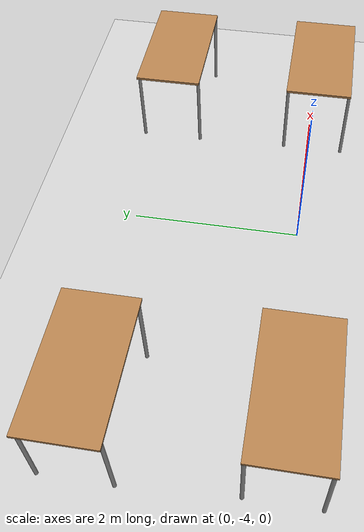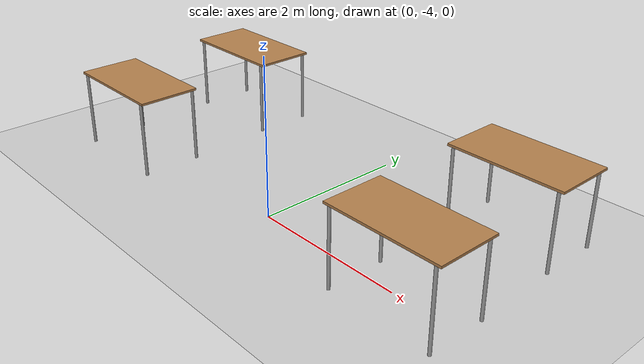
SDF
<sdf version="1.6">
 <world name="default">
  <model name="ground_plane">
   <static>1</static>
   <link name="link">
    <collision name="collision">
     <geometry><plane><normal>0 0 1</normal><size>100 100</size></plane></geometry>
     <surface>
      <contact><collide_bitmask>65535</collide_bitmask></contact>
      <friction><ode><mu>100</mu><mu2>50</mu2></ode></friction>
     </surface>
    </collision>
    <visual name="visual">
     <cast_shadows>0</cast_shadows>
     <geometry><plane><normal>0 0 1</normal><size>100 100</size></plane></geometry>
     <material>
      <script><uri>file://media/materials/scripts/gazebo.material</uri><name>Gazebo/Grey</name></script>
     </material>
    </visual>
   </link>
  </model>
  <model name="model_3">
   <model name="table">
    <static>1</static>
    <link name="link">
     <collision name="surface">
      <pose>0 0 1 0 -0 0</pose>
      <geometry><box><size>1.5 0.8 0.03</size></box></geometry>
      <surface><friction><ode><mu>0.6</mu><mu2>0.6</mu2></ode></friction></surface>
     </collision>
     <visual name="visual1">
      <pose>0 0 1 0 -0 0</pose>
      <geometry><box><size>1.5 0.8 0.03</size></box></geometry>
      <material>
       <script><uri>file://media/materials/scripts/gazebo.material</uri><name>Gazebo/Wood</name></script>
      </material>
     </visual>
     <collision name="front_left_leg">
      <pose>0.68 0.38 0.5 0 -0 0</pose>
      <geometry><cylinder><radius>0.02</radius><length>1</length></cylinder></geometry>
     </collision>
     <visual name="front_left_leg">
      <pose>0.68 0.38 0.5 0 -0 0</pose>
      <geometry><cylinder><radius>0.02</radius><length>1</length></cylinder></geometry>
      <material>
       <script><uri>file://media/materials/scripts/gazebo.material</uri><name>Gazebo/Grey</name></script>
      </material>
     </visual>
     <collision name="front_right_leg">
      <pose>0.68 -0.38 0.5 0 -0 0</pose>
      <geometry><cylinder><radius>0.02</radius><length>1</length></cylinder></geometry>
     </collision>
     <visual name="front_right_leg">
      <pose>0.68 -0.38 0.5 0 -0 0</pose>
      <geometry><cylinder><radius>0.02</radius><length>1</length></cylinder></geometry>
      <material>
       <script><uri>file://media/materials/scripts/gazebo.material</uri><name>Gazebo/Grey</name></script>
      </material>
     </visual>
     <collision name="back_right_leg">
      <pose>-0.68 -0.38 0.5 0 -0 0</pose>
      <geometry><cylinder><radius>0.02</radius><length>1</length></cylinder></geometry>
     </collision>
     <visual name="back_right_leg">
      <pose>-0.68 -0.38 0.5 0 -0 0</pose>
      <geometry><cylinder><radius>0.02</radius><length>1</length></cylinder></geometry>
      <material>
       <script><uri>file://media/materials/scripts/gazebo.material</uri><name>Gazebo/Grey</name></script>
      </material>
     </visual>
     <collision name="back_left_leg">
      <pose>-0.68 0.38 0.5 0 -0 0</pose>
      <geometry><cylinder><radius>0.02</radius><length>1</length></cylinder></geometry>
     </collision>
     <visual name="back_left_leg">
      <pose>-0.68 0.38 0.5 0 -0 0</pose>
      <geometry><cylinder><radius>0.02</radius><length>1</length></cylinder></geometry>
      <material>
       <script><uri>file://media/materials/scripts/gazebo.material</uri><name>Gazebo/Grey</name></script>
      </material>
     </visual>
    </link>
    <pose>2.34769 0.983823 -0.013295 0 -0 0</pose>
   </model>
   <model name="table_clone">
    <static>1</static>
    <link name="link">
     <collision name="surface">
      <pose>0 0 1 0 -0 0</pose>
      <geometry><box><size>1.5 0.8 0.03</size></box></geometry>
      <surface><friction><ode><mu>0.6</mu><mu2>0.6</mu2></ode></friction></surface>
     </collision>
     <visual name="visual1">
      <pose>0 0 1 0 -0 0</pose>
      <geometry><box><size>1.5 0.8 0.03</size></box></geometry>
      <material>
       <script><uri>file://media/materials/scripts/gazebo.material</uri><name>Gazebo/Wood</name></script>
      </material>
     </visual>
     <collision name="front_left_leg">
      <pose>0.68 0.38 0.5 0 -0 0</pose>
      <geometry><cylinder><radius>0.02</radius><length>1</length></cylinder></geometry>
     </collision>
     <visual name="front_left_leg">
      <pose>0.68 0.38 0.5 0 -0 0</pose>
      <geometry><cylinder><radius>0.02</radius><length>1</length></cylinder></geometry>
      <material>
       <script><uri>file://media/materials/scripts/gazebo.material</uri><name>Gazebo/Grey</name></script>
      </material>
     </visual>
     <collision name="front_right_leg">
      <pose>0.68 -0.38 0.5 0 -0 0</pose>
      <geometry><cylinder><radius>0.02</radius><length>1</length></cylinder></geometry>
     </collision>
     <visual name="front_right_leg">
      <pose>0.68 -0.38 0.5 0 -0 0</pose>
      <geometry><cylinder><radius>0.02</radius><length>1</length></cylinder></geometry>
      <material>
       <script><uri>file://media/materials/scripts/gazebo.material</uri><name>Gazebo/Grey</name></script>
      </material>
     </visual>
     <collision name="back_right_leg">
      <pose>-0.68 -0.38 0.5 0 -0 0</pose>
      <geometry><cylinder><radius>0.02</radius><length>1</length></cylinder></geometry>
     </collision>
     <visual name="back_right_leg">
      <pose>-0.68 -0.38 0.5 0 -0 0</pose>
      <geometry><cylinder><radius>0.02</radius><length>1</length></cylinder></geometry>
      <material>
       <script><uri>file://media/materials/scripts/gazebo.material</uri><name>Gazebo/Grey</name></script>
      </material>
     </visual>
     <collision name="back_left_leg">
      <pose>-0.68 0.38 0.5 0 -0 0</pose>
      <geometry><cylinder><radius>0.02</radius><length>1</length></cylinder></geometry>
     </collision>
     <visual name="back_left_leg">
      <pose>-0.68 0.38 0.5 0 -0 0</pose>
      <geometry><cylinder><radius>0.02</radius><length>1</length></cylinder></geometry>
      <material>
       <script><uri>file://media/materials/scripts/gazebo.material</uri><name>Gazebo/Grey</name></script>
      </material>
     </visual>
    </link>
    <pose>-2.40389 0.944422 0.016363 0 -0 0</pose>
   </model>
   <model name="table_clone_clone">
    <static>1</static>
    <link name="link">
     <collision name="surface">
      <pose>0 0 1 0 -0 0</pose>
      <geometry><box><size>1.5 0.8 0.03</size></box></geometry>
      <surface><friction><ode><mu>0.6</mu><mu2>0.6</mu2></ode></friction></surface>
     </collision>
     <visual name="visual1">
      <pose>0 0 1 0 -0 0</pose>
      <geometry><box><size>1.5 0.8 0.03</size></box></geometry>
      <material>
       <script><uri>file://media/materials/scripts/gazebo.material</uri><name>Gazebo/Wood</name></script>
      </material>
     </visual>
     <collision name="front_left_leg">
      <pose>0.68 0.38 0.5 0 -0 0</pose>
      <geometry><cylinder><radius>0.02</radius><length>1</length></cylinder></geometry>
     </collision>
     <visual name="front_left_leg">
      <pose>0.68 0.38 0.5 0 -0 0</pose>
      <geometry><cylinder><radius>0.02</radius><length>1</length></cylinder></geometry>
      <material>
       <script><uri>file://media/materials/scripts/gazebo.material</uri><name>Gazebo/Grey</name></script>
      </material>
     </visual>
     <collision name="front_right_leg">
      <pose>0.68 -0.38 0.5 0 -0 0</pose>
      <geometry><cylinder><radius>0.02</radius><length>1</length></cylinder></geometry>
     </collision>
     <visual name="front_right_leg">
      <pose>0.68 -0.38 0.5 0 -0 0</pose>
      <geometry><cylinder><radius>0.02</radius><length>1</length></cylinder></geometry>
      <material>
       <script><uri>file://media/materials/scripts/gazebo.material</uri><name>Gazebo/Grey</name></script>
      </material>
     </visual>
     <collision name="back_right_leg">
      <pose>-0.68 -0.38 0.5 0 -0 0</pose>
      <geometry><cylinder><radius>0.02</radius><length>1</length></cylinder></geometry>
     </collision>
     <visual name="back_right_leg">
      <pose>-0.68 -0.38 0.5 0 -0 0</pose>
      <geometry><cylinder><radius>0.02</radius><length>1</length></cylinder></geometry>
      <material>
       <script><uri>file://media/materials/scripts/gazebo.material</uri><name>Gazebo/Grey</name></script>
      </material>
     </visual>
     <collision name="back_left_leg">
      <pose>-0.68 0.38 0.5 0 -0 0</pose>
      <geometry><cylinder><radius>0.02</radius><length>1</length></cylinder></geometry>
     </collision>
     <visual name="back_left_leg">
      <pose>-0.68 0.38 0.5 0 -0 0</pose>
      <geometry><cylinder><radius>0.02</radius><length>1</length></cylinder></geometry>
      <material>
       <script><uri>file://media/materials/scripts/gazebo.material</uri><name>Gazebo/Grey</name></script>
      </material>
     </visual>
    </link>
    <pose>2.38395 -0.922438 -0.013295 0 -0 0</pose>
   </model>
   <model name="table_clone_clone_clone">
    <static>1</static>
    <link name="link">
     <collision name="surface">
      <pose>0 0 1 0 -0 0</pose>
      <geometry><box><size>1.5 0.8 0.03</size></box></geometry>
      <surface><friction><ode><mu>0.6</mu><mu2>0.6</mu2></ode></friction></surface>
     </collision>
     <visual name="visual1">
      <pose>0 0 1 0 -0 0</pose>
      <geometry><box><size>1.5 0.8 0.03</size></box></geometry>
      <material>
       <script><uri>file://media/materials/scripts/gazebo.material</uri><name>Gazebo/Wood</name></script>
      </material>
     </visual>
     <collision name="front_left_leg">
      <pose>0.68 0.38 0.5 0 -0 0</pose>
      <geometry><cylinder><radius>0.02</radius><length>1</length></cylinder></geometry>
     </collision>
     <visual name="front_left_leg">
      <pose>0.68 0.38 0.5 0 -0 0</pose>
      <geometry><cylinder><radius>0.02</radius><length>1</length></cylinder></geometry>
      <material>
       <script><uri>file://media/materials/scripts/gazebo.material</uri><name>Gazebo/Grey</name></script>
      </material>
     </visual>
     <collision name="front_right_leg">
      <pose>0.68 -0.38 0.5 0 -0 0</pose>
      <geometry><cylinder><radius>0.02</radius><length>1</length></cylinder></geometry>
     </collision>
     <visual name="front_right_leg">
      <pose>0.68 -0.38 0.5 0 -0 0</pose>
      <geometry><cylinder><radius>0.02</radius><length>1</length></cylinder></geometry>
      <material>
       <script><uri>file://media/materials/scripts/gazebo.material</uri><name>Gazebo/Grey</name></script>
      </material>
     </visual>
     <collision name="back_right_leg">
      <pose>-0.68 -0.38 0.5 0 -0 0</pose>
      <geometry><cylinder><radius>0.02</radius><length>1</length></cylinder></geometry>
     </collision>
     <visual name="back_right_leg">
      <pose>-0.68 -0.38 0.5 0 -0 0</pose>
      <geometry><cylinder><radius>0.02</radius><length>1</length></cylinder></geometry>
      <material>
       <script><uri>file://media/materials/scripts/gazebo.material</uri><name>Gazebo/Grey</name></script>
      </material>
     </visual>
     <collision name="back_left_leg">
      <pose>-0.68 0.38 0.5 0 -0 0</pose>
      <geometry><cylinder><radius>0.02</radius><length>1</length></cylinder></geometry>
     </collision>
     <visual name="back_left_leg">
      <pose>-0.68 0.38 0.5 0 -0 0</pose>
      <geometry><cylinder><radius>0.02</radius><length>1</length></cylinder></geometry>
      <material>
       <script><uri>file://media/materials/scripts/gazebo.material</uri><name>Gazebo/Grey</name></script>
      </material>
     </visual>
    </link>
    <pose>-2.32775 -1.00581 0.010227 0 -0 0</pose>
   </model>
   <static>0</static>
   <pose>-0.176 -3.13916 0.013295 0 -0 0</pose>
  </model>
 </world>
</sdf>
